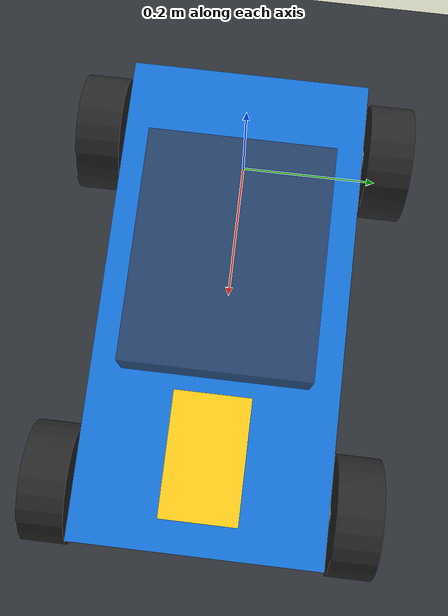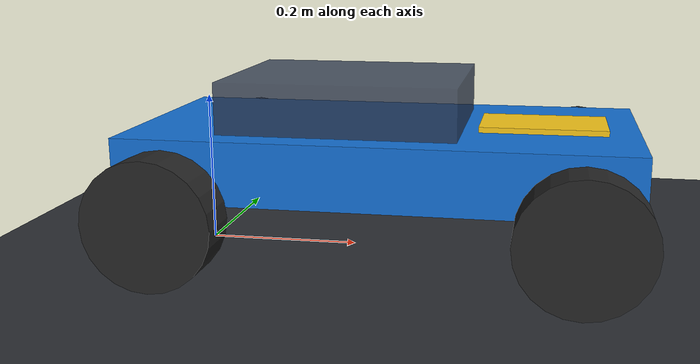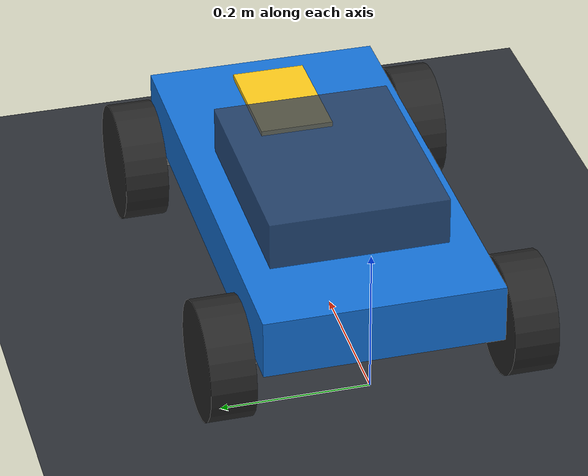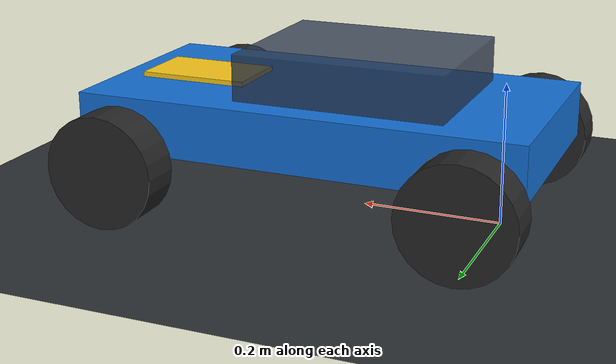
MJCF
<mujoco model="ackerman_car_2d">
    <compiler angle="radian" coordinate="local"/>

    <option gravity="0 0 -9.81" timestep="0.01" integrator="implicitfast">
        <flag frictionloss="enable"/>
    </option>

    <asset>
        <texture type="skybox" builtin="gradient" rgb1="0.3 0.5 0.7" rgb2="0 0 0" width="512" height="512"/>
        <texture name="grid" type="2d" builtin="checker" width="512" height="512" rgb1="0.2 0.22 0.24" rgb2="0.15 0.16 0.18"/>
        <material name="grid_mat" texture="grid" texrepeat="50 50" reflectance="0.1"/>

        <material name="chassis_mat" rgba="0.08 0.45 0.85 1.0" specular="0.6" shininess="0.8"/>
        <material name="hood_mat" rgba="1.0 0.8 0.1 1.0" specular="0.4"/>
        <material name="wheel_mat" rgba="0.15 0.15 0.15 1.0"/>
        <material name="axle_mat" rgba="0.6 0.6 0.6 1.0"/>
    </asset>

    <worldbody>
        <!-- Ground Plane -->
        <geom name="floor" type="plane" size="200 200 0.1" material="grid_mat" friction="2.0 0.01 0.01"/>

        <body name="chassis" pos="0 0 0.08">
            <joint name="slide_x" type="slide" axis="1 0 0" damping="0.1"/>
            <joint name="slide_y" type="slide" axis="0 1 0" damping="0.1"/>
            <joint name="hinge_yaw" type="hinge" axis="0 0 1" damping="0.5"/>

            <!-- Main Chassis Box (wheelbase L=0.5m, center at x=0.25) -->
            <geom name="chassis_body" type="box" pos="0.25 0 0.05" size="0.32 0.16 0.04" material="chassis_mat" mass="12.0"/>
            <!-- Front hood direction marker (points towards positive X) -->
            <geom name="hood_marker" type="box" pos="0.45 0 0.092" size="0.08 0.05 0.005" material="hood_mat" mass="0.1"/>
            <!-- Roof / Cockpit -->
            <geom name="cabin" type="box" pos="0.20 0 0.12" size="0.15 0.12 0.035" rgba="0.2 0.25 0.35 0.8" mass="2.0"/>

            <!-- Rear Axle Rod -->
            <geom name="rear_axle" type="cylinder" pos="0 0 0" size="0.015 0.18" zaxis="0 1 0" material="axle_mat" mass="0.5"/>

            <!-- Rear Left Wheel -->
            <body name="rear_left_wheel" pos="0 0.20 0">
                <joint name="rear_left_roll" type="hinge" axis="0 1 0" damping="0.02"/>
                <geom name="rl_geom" type="cylinder" size="0.08 0.03" zaxis="0 1 0" material="wheel_mat" friction="2.0 0.01 0.01" mass="1.0"/>
            </body>

            <!-- Rear Right Wheel -->
            <body name="rear_right_wheel" pos="0 -0.20 0">
                <joint name="rear_right_roll" type="hinge" axis="0 1 0" damping="0.02"/>
                <geom name="rr_geom" type="cylinder" size="0.08 0.03" zaxis="0 1 0" material="wheel_mat" friction="2.0 0.01 0.01" mass="1.0"/>
            </body>

            <!--
                Front Steering Assembly (at wheelbase distance L = 0.50m):
                Rotates around Z-axis by steering angle delta.
            -->
            <body name="front_steer_assembly" pos="0.50 0 0">
                <joint name="steer_joint" type="hinge" axis="0 0 1" range="-0.6 0.6" limited="true" damping="1.5"/>
                <!-- Front Axle Rod -->
                <geom name="front_axle" type="cylinder" pos="0 0 0" size="0.015 0.18" zaxis="0 1 0" material="axle_mat" mass="0.5"/>

                <!-- Front Left Wheel -->
                <body name="front_left_wheel" pos="0 0.20 0">
                    <joint name="front_left_roll" type="hinge" axis="0 1 0" damping="0.02"/>
                    <geom name="fl_geom" type="cylinder" size="0.08 0.03" zaxis="0 1 0" material="wheel_mat" friction="2.0 0.01 0.01" mass="1.0"/>
                </body>

                <!-- Front Right Wheel -->
                <body name="front_right_wheel" pos="0 -0.20 0">
                    <joint name="front_right_roll" type="hinge" axis="0 1 0" damping="0.02"/>
                    <geom name="fr_geom" type="cylinder" size="0.08 0.03" zaxis="0 1 0" material="wheel_mat" friction="2.0 0.01 0.01" mass="1.0"/>
                </body>
            </body>

            <!-- Tracking Cameras -->
            <camera name="chase_cam" pos="-2.5 0 1.5" xyaxes="0 -1 0 0.5 0 1" mode="trackcom"/>
            <camera name="top_cam" pos="0.25 0 8.0" xyaxes="0 -1 0 1 0 0" mode="trackcom"/>
        </body>
    </worldbody>

    <!-- Actuators: Servo position steering -->
    <actuator>
        <position name="steer_actuator" joint="steer_joint" kp="250" kv="25" ctrlrange="-0.6 0.6"/>
    </actuator>
</mujoco>
